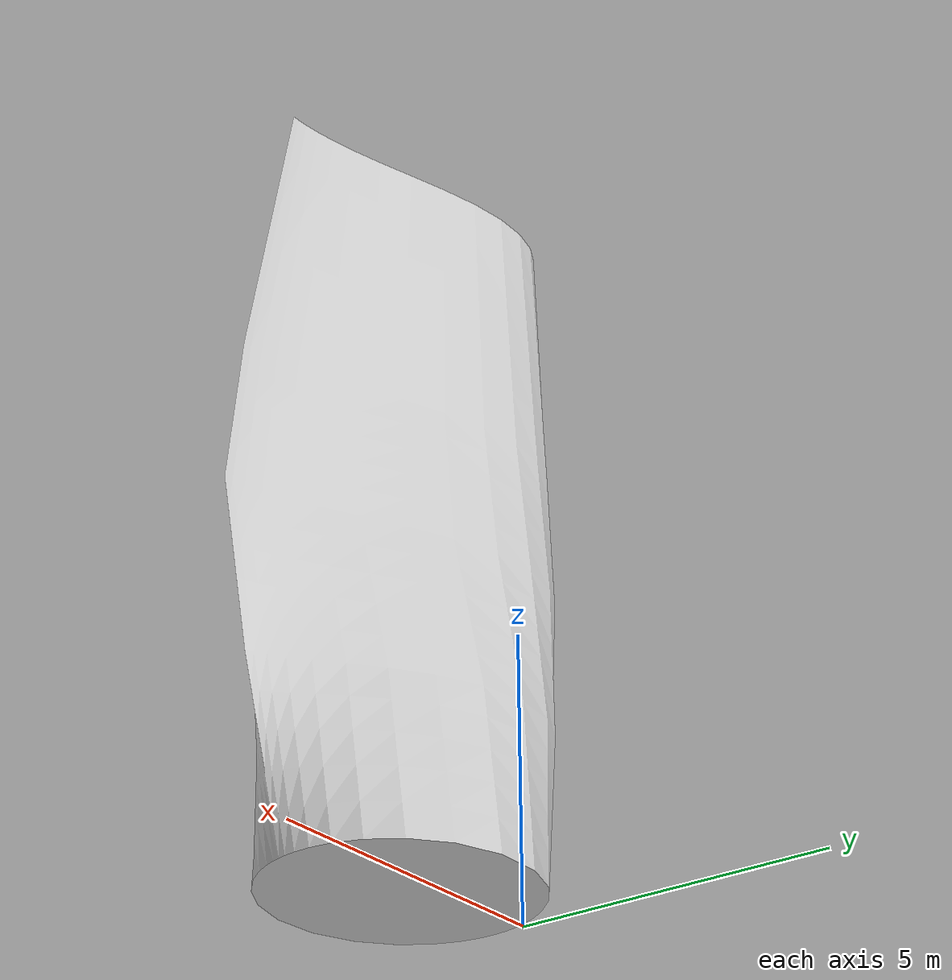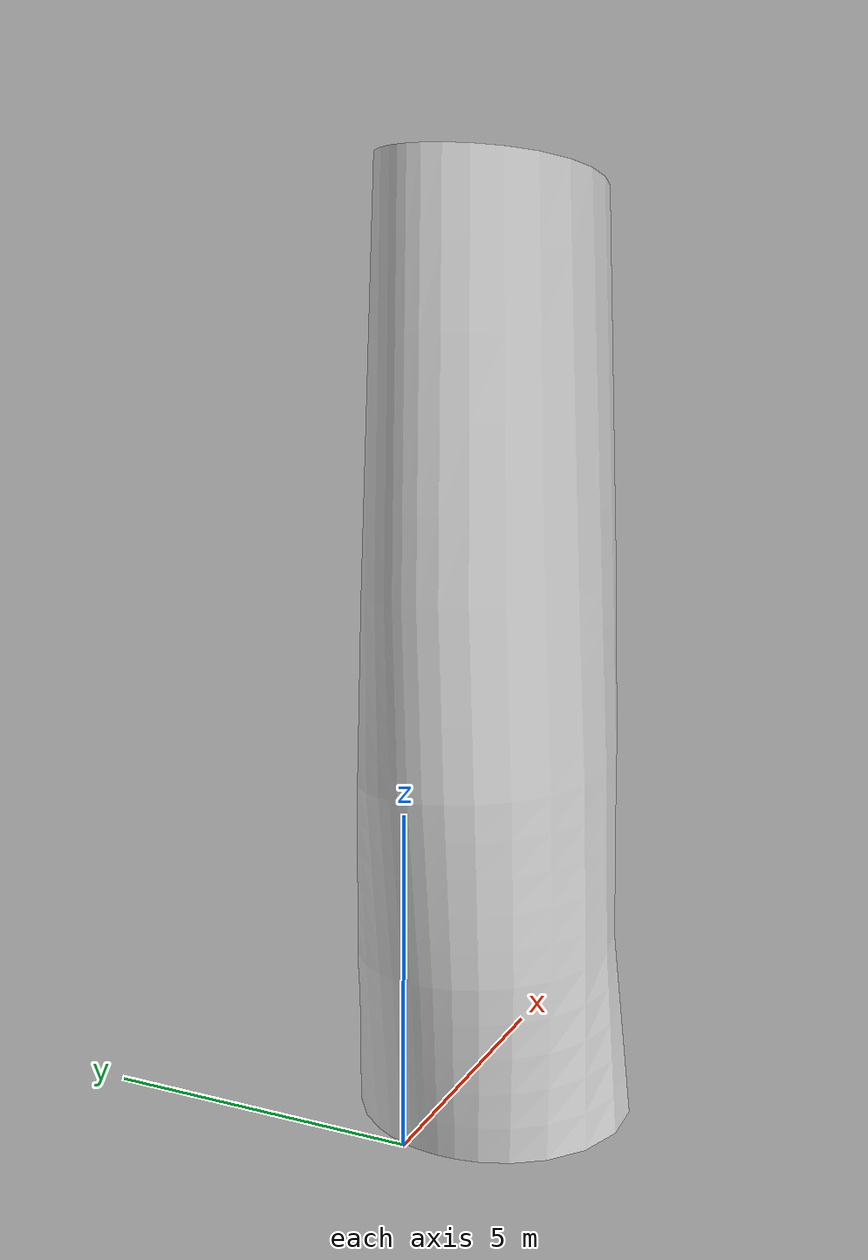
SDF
<?xml version='1.0'?>
<sdf version='1.9'>
  <model name='blade_root'>
  <static>true</static>
    <link name='blade_link'>
        <velocity_decay>
            <linear>1000000</linear>  <!-- Higher values mean more damping, hence slower max speed -->
            <angular>1000000</angular>
        </velocity_decay>
        <self_collide>true</self_collide>
        <inertial>
            <mass>1000000</mass>
            <inertia>
              <ixx>1000000</ixx>
              <iyy>1000000</iyy>
              <izz>1000000</izz>
            </inertia>
          </inertial>
      <collision name="blade_collision">
        <geometry>
          <mesh>
            <uri>model://blade_root/meshes/blade_root.stl</uri>
            <scale> 0.25 0.25 0.25 </scale>
          </mesh>
        </geometry>
        <surface>
            <friction>
                <ode>
                    <mu>
                        50.0
                    </mu>
                    <mu2>
                        50.0
                    </mu2>
                </ode>
            </friction>
            <contact>
              <ode>
                <max_vel>0</max_vel>
                <min_depth>0.01</min_depth>
              </ode>
            </contact>
          </surface>
      </collision>
      <visual name="blade1_visual">
        <geometry>
          <mesh>
            <uri>model://blade_root/meshes/blade_root.stl</uri>
            <scale> 0.25 0.25 0.25 </scale>
          </mesh>
        </geometry>
        <material>
          <ambient>0.8 0.8 0.8 1</ambient>
          <diffuse>0.8 0.8 0.8 1</diffuse>
          <specular>1.0 1.0 1.0 1.0</specular>
        </material>
      </visual>
    </link>
  </model>
</sdf>
